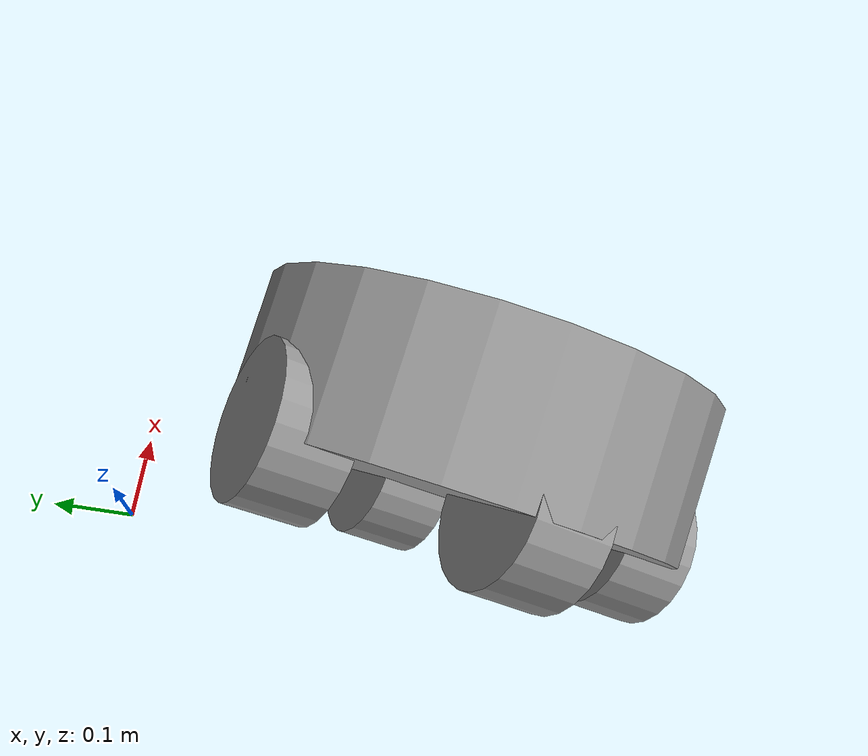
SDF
<?xml version='1.0'?>
<sdf version='1.6'>
  <model name='model'>
    <link name='link_5'>
      <pose frame=''>0.084116 -0.192101 0.138708 3.01191 1.04022 1.42494</pose>
      <inertial>
        <mass>1</mass>
        <inertia>
          <ixx>0.145833</ixx>
          <ixy>0</ixy>
          <ixz>0</ixz>
          <iyy>0.145833</iyy>
          <iyz>0</iyz>
          <izz>0.125</izz>
        </inertia>
        <pose frame=''>0 0 0 0 -0 0</pose>
      </inertial>
      <self_collide>0</self_collide>
      <kinematic>0</kinematic>
      <visual name='visual'>
        <pose frame=''>0 0 0 0 -0 0</pose>
        <geometry>
          <cylinder>
            <radius>0.1</radius>
            <length>0.1</length>
          </cylinder>
        </geometry>
        <material>
          <lighting>1</lighting>
          <script>
            <uri>file://media/materials/scripts/gazebo.material</uri>
            <name>Gazebo/Grey</name>
          </script>
          <shader type='pixel'>
            <normal_map>__default__</normal_map>
          </shader>
          <ambient>0.3 0.3 0.3 1</ambient>
          <diffuse>0.7 0.7 0.7 1</diffuse>
          <specular>0 0 0.01 1</specular>
          <emissive>0 0 0 1</emissive>
        </material>
        <transparency>0</transparency>
        <cast_shadows>1</cast_shadows>
      </visual>
      <collision name='collision'>
        <laser_retro>0</laser_retro>
        <max_contacts>10</max_contacts>
        <pose frame=''>0 0 0 0 -0 0</pose>
        <geometry>
          <cylinder>
            <radius>0.1</radius>
            <length>0.1</length>
          </cylinder>
        </geometry>
        <surface>
          <friction>
            <ode>
              <mu>1</mu>
              <mu2>1</mu2>
              <fdir1>0 0 0</fdir1>
              <slip1>0</slip1>
              <slip2>0</slip2>
            </ode>
            <torsional>
              <coefficient>1</coefficient>
              <patch_radius>0</patch_radius>
              <surface_radius>0</surface_radius>
              <use_patch_radius>1</use_patch_radius>
              <ode>
                <slip>0</slip>
              </ode>
            </torsional>
          </friction>
          <bounce>
            <restitution_coefficient>0</restitution_coefficient>
            <threshold>1e+06</threshold>
          </bounce>
          <contact>
            <collide_without_contact>0</collide_without_contact>
            <collide_without_contact_bitmask>1</collide_without_contact_bitmask>
            <collide_bitmask>1</collide_bitmask>
            <ode>
              <soft_cfm>0</soft_cfm>
              <soft_erp>0.2</soft_erp>
              <kp>1e+13</kp>
              <kd>1</kd>
              <max_vel>0.01</max_vel>
              <min_depth>0</min_depth>
            </ode>
            <bullet>
              <split_impulse>1</split_impulse>
              <split_impulse_penetration_threshold>-0.01</split_impulse_penetration_threshold>
              <soft_cfm>0</soft_cfm>
              <soft_erp>0.2</soft_erp>
              <kp>1e+13</kp>
              <kd>1</kd>
            </bullet>
          </contact>
        </surface>
      </collision>
    </link>
    <link name='link_5_clone'>
      <pose frame=''>0.092898 -0.618652 -0.109782 -2.06079 -0.111875 -3.12499</pose>
      <inertial>
        <mass>1</mass>
        <inertia>
          <ixx>0.145833</ixx>
          <ixy>0</ixy>
          <ixz>0</ixz>
          <iyy>0.145833</iyy>
          <iyz>0</iyz>
          <izz>0.125</izz>
        </inertia>
        <pose frame=''>0 0 0 0 -0 0</pose>
      </inertial>
      <self_collide>0</self_collide>
      <kinematic>0</kinematic>
      <gravity>1</gravity>
      <visual name='visual'>
        <pose frame=''>0 0 0 0 -0 0</pose>
        <geometry>
          <cylinder>
            <radius>0.1</radius>
            <length>0.1</length>
          </cylinder>
        </geometry>
        <material>
          <lighting>1</lighting>
          <script>
            <uri>file://media/materials/scripts/gazebo.material</uri>
            <name>Gazebo/Grey</name>
          </script>
          <shader type='pixel'>
            <normal_map>__default__</normal_map>
          </shader>
          <ambient>0.3 0.3 0.3 1</ambient>
          <diffuse>0.7 0.7 0.7 1</diffuse>
          <specular>0 0 0.01 1</specular>
          <emissive>0 0 0 1</emissive>
        </material>
        <transparency>0</transparency>
        <cast_shadows>1</cast_shadows>
      </visual>
      <collision name='collision'>
        <laser_retro>0</laser_retro>
        <max_contacts>10</max_contacts>
        <pose frame=''>0 0 0 0 -0 0</pose>
        <geometry>
          <cylinder>
            <radius>0.1</radius>
            <length>0.1</length>
          </cylinder>
        </geometry>
        <surface>
          <friction>
            <ode>
              <mu>1</mu>
              <mu2>1</mu2>
              <fdir1>0 0 0</fdir1>
              <slip1>0</slip1>
              <slip2>0</slip2>
            </ode>
            <torsional>
              <coefficient>1</coefficient>
              <patch_radius>0</patch_radius>
              <surface_radius>0</surface_radius>
              <use_patch_radius>1</use_patch_radius>
              <ode>
                <slip>0</slip>
              </ode>
            </torsional>
          </friction>
          <bounce>
            <restitution_coefficient>0</restitution_coefficient>
            <threshold>1e+06</threshold>
          </bounce>
          <contact>
            <collide_without_contact>0</collide_without_contact>
            <collide_without_contact_bitmask>1</collide_without_contact_bitmask>
            <collide_bitmask>1</collide_bitmask>
            <ode>
              <soft_cfm>0</soft_cfm>
              <soft_erp>0.2</soft_erp>
              <kp>1e+13</kp>
              <kd>1</kd>
              <max_vel>0.01</max_vel>
              <min_depth>0</min_depth>
            </ode>
            <bullet>
              <split_impulse>1</split_impulse>
              <split_impulse_penetration_threshold>-0.01</split_impulse_penetration_threshold>
              <soft_cfm>0</soft_cfm>
              <soft_erp>0.2</soft_erp>
              <kp>1e+13</kp>
              <kd>1</kd>
            </bullet>
          </contact>
        </surface>
      </collision>
    </link>
    <link name='link_5_clone_0'>
      <pose frame=''>0.024163 -0.474387 0.132621 -2.10359 0.093263 3.0619</pose>
      <inertial>
        <mass>1</mass>
        <inertia>
          <ixx>0.145833</ixx>
          <ixy>0</ixy>
          <ixz>0</ixz>
          <iyy>0.145833</iyy>
          <iyz>0</iyz>
          <izz>0.125</izz>
        </inertia>
        <pose frame=''>0 0 0 0 -0 0</pose>
      </inertial>
      <self_collide>0</self_collide>
      <kinematic>0</kinematic>
      <visual name='visual'>
        <pose frame=''>0 0 0 0 -0 0</pose>
        <geometry>
          <cylinder>
            <radius>0.1</radius>
            <length>0.1</length>
          </cylinder>
        </geometry>
        <material>
          <lighting>1</lighting>
          <script>
            <uri>file://media/materials/scripts/gazebo.material</uri>
            <name>Gazebo/Grey</name>
          </script>
          <shader type='pixel'>
            <normal_map>__default__</normal_map>
          </shader>
          <ambient>0.3 0.3 0.3 1</ambient>
          <diffuse>0.7 0.7 0.7 1</diffuse>
          <specular>0 0 0.01 1</specular>
          <emissive>0 0 0 1</emissive>
        </material>
        <transparency>0</transparency>
        <cast_shadows>1</cast_shadows>
      </visual>
      <collision name='collision'>
        <laser_retro>0</laser_retro>
        <max_contacts>10</max_contacts>
        <pose frame=''>0 0 0 0 -0 0</pose>
        <geometry>
          <cylinder>
            <radius>0.1</radius>
            <length>0.1</length>
          </cylinder>
        </geometry>
        <surface>
          <friction>
            <ode>
              <mu>1</mu>
              <mu2>1</mu2>
              <fdir1>0 0 0</fdir1>
              <slip1>0</slip1>
              <slip2>0</slip2>
            </ode>
            <torsional>
              <coefficient>1</coefficient>
              <patch_radius>0</patch_radius>
              <surface_radius>0</surface_radius>
              <use_patch_radius>1</use_patch_radius>
              <ode>
                <slip>0</slip>
              </ode>
            </torsional>
          </friction>
          <bounce>
            <restitution_coefficient>0</restitution_coefficient>
            <threshold>1e+06</threshold>
          </bounce>
          <contact>
            <collide_without_contact>0</collide_without_contact>
            <collide_without_contact_bitmask>1</collide_without_contact_bitmask>
            <collide_bitmask>1</collide_bitmask>
            <ode>
              <soft_cfm>0</soft_cfm>
              <soft_erp>0.2</soft_erp>
              <kp>1e+13</kp>
              <kd>1</kd>
              <max_vel>0.01</max_vel>
              <min_depth>0</min_depth>
            </ode>
            <bullet>
              <split_impulse>1</split_impulse>
              <split_impulse_penetration_threshold>-0.01</split_impulse_penetration_threshold>
              <soft_cfm>0</soft_cfm>
              <soft_erp>0.2</soft_erp>
              <kp>1e+13</kp>
              <kd>1</kd>
            </bullet>
          </contact>
        </surface>
      </collision>
    </link>
    <link name='link_5_clone_0_clone'>
      <pose frame=''>0.16643 -0.300922 -0.176753 -2.91707 -1.03814 -1.83648</pose>
      <inertial>
        <mass>1</mass>
        <inertia>
          <ixx>0.145833</ixx>
          <ixy>0</ixy>
          <ixz>0</ixz>
          <iyy>0.145833</iyy>
          <iyz>0</iyz>
          <izz>0.125</izz>
        </inertia>
        <pose frame=''>0 0 0 0 -0 0</pose>
      </inertial>
      <self_collide>0</self_collide>
      <kinematic>0</kinematic>
      <visual name='visual'>
        <pose frame=''>0 0 0 0 -0 0</pose>
        <geometry>
          <cylinder>
            <radius>0.1</radius>
            <length>0.1</length>
          </cylinder>
        </geometry>
        <material>
          <lighting>1</lighting>
          <script>
            <uri>file://media/materials/scripts/gazebo.material</uri>
            <name>Gazebo/Grey</name>
          </script>
          <shader type='pixel'>
            <normal_map>__default__</normal_map>
          </shader>
          <ambient>0.3 0.3 0.3 1</ambient>
          <diffuse>0.7 0.7 0.7 1</diffuse>
          <specular>0 0 0.01 1</specular>
          <emissive>0 0 0 1</emissive>
        </material>
        <transparency>0</transparency>
        <cast_shadows>1</cast_shadows>
      </visual>
      <collision name='collision'>
        <laser_retro>0</laser_retro>
        <max_contacts>10</max_contacts>
        <pose frame=''>0 0 0 0 -0 0</pose>
        <geometry>
          <cylinder>
            <radius>0.1</radius>
            <length>0.1</length>
          </cylinder>
        </geometry>
        <surface>
          <friction>
            <ode>
              <mu>1</mu>
              <mu2>1</mu2>
              <fdir1>0 0 0</fdir1>
              <slip1>0</slip1>
              <slip2>0</slip2>
            </ode>
            <torsional>
              <coefficient>1</coefficient>
              <patch_radius>0</patch_radius>
              <surface_radius>0</surface_radius>
              <use_patch_radius>1</use_patch_radius>
              <ode>
                <slip>0</slip>
              </ode>
            </torsional>
          </friction>
          <bounce>
            <restitution_coefficient>0</restitution_coefficient>
            <threshold>1e+06</threshold>
          </bounce>
          <contact>
            <collide_without_contact>0</collide_without_contact>
            <collide_without_contact_bitmask>1</collide_without_contact_bitmask>
            <collide_bitmask>1</collide_bitmask>
            <ode>
              <soft_cfm>0</soft_cfm>
              <soft_erp>0.2</soft_erp>
              <kp>1e+13</kp>
              <kd>1</kd>
              <max_vel>0.01</max_vel>
              <min_depth>0</min_depth>
            </ode>
            <bullet>
              <split_impulse>1</split_impulse>
              <split_impulse_penetration_threshold>-0.01</split_impulse_penetration_threshold>
              <soft_cfm>0</soft_cfm>
              <soft_erp>0.2</soft_erp>
              <kp>1e+13</kp>
              <kd>1</kd>
            </bullet>
          </contact>
        </surface>
      </collision>
    </link>
    <link name='link_6'>
      <pose frame=''>0.186201 -0.401708 0.002556 1.02767 0.944518 0.934542</pose>
      <inertial>
        <mass>1</mass>
        <inertia>
          <ixx>0.145833</ixx>
          <ixy>0</ixy>
          <ixz>0</ixz>
          <iyy>0.145833</iyy>
          <iyz>0</iyz>
          <izz>0.125</izz>
        </inertia>
        <pose frame=''>0 0 0 0 -0 0</pose>
      </inertial>
      <self_collide>0</self_collide>
      <kinematic>0</kinematic>
      <visual name='visual'>
        <pose frame=''>0 0 0 0 -0 0</pose>
        <geometry>
          <cylinder>
            <radius>0.3</radius>
            <length>0.2</length>
          </cylinder>
        </geometry>
        <material>
          <lighting>1</lighting>
          <script>
            <uri>file://media/materials/scripts/gazebo.material</uri>
            <name>Gazebo/Grey</name>
          </script>
          <shader type='pixel'>
            <normal_map>__default__</normal_map>
          </shader>
          <ambient>0.3 0.3 0.3 1</ambient>
          <diffuse>0.7 0.7 0.7 1</diffuse>
          <specular>0.01 0.01 0.01 1</specular>
          <emissive>0 0 0 1</emissive>
        </material>
        <transparency>0</transparency>
        <cast_shadows>1</cast_shadows>
      </visual>
      <collision name='collision'>
        <laser_retro>0</laser_retro>
        <max_contacts>10</max_contacts>
        <pose frame=''>0 0 0 0 -0 0</pose>
        <geometry>
          <cylinder>
            <radius>0.3</radius>
            <length>0.2</length>
          </cylinder>
        </geometry>
        <surface>
          <friction>
            <ode>
              <mu>1</mu>
              <mu2>1</mu2>
              <fdir1>0 0 0</fdir1>
              <slip1>0</slip1>
              <slip2>0</slip2>
            </ode>
            <torsional>
              <coefficient>1</coefficient>
              <patch_radius>0</patch_radius>
              <surface_radius>0</surface_radius>
              <use_patch_radius>1</use_patch_radius>
              <ode>
                <slip>0</slip>
              </ode>
            </torsional>
          </friction>
          <bounce>
            <restitution_coefficient>0</restitution_coefficient>
            <threshold>1e+06</threshold>
          </bounce>
          <contact>
            <collide_without_contact>0</collide_without_contact>
            <collide_without_contact_bitmask>1</collide_without_contact_bitmask>
            <collide_bitmask>1</collide_bitmask>
            <ode>
              <soft_cfm>0</soft_cfm>
              <soft_erp>0.2</soft_erp>
              <kp>1e+13</kp>
              <kd>1</kd>
              <max_vel>0.01</max_vel>
              <min_depth>0</min_depth>
            </ode>
            <bullet>
              <split_impulse>1</split_impulse>
              <split_impulse_penetration_threshold>-0.01</split_impulse_penetration_threshold>
              <soft_cfm>0</soft_cfm>
              <soft_erp>0.2</soft_erp>
              <kp>1e+13</kp>
              <kd>1</kd>
            </bullet>
          </contact>
        </surface>
      </collision>
    </link>
    <joint name='link_6_JOINT_0' type='revolute'>
      <parent>link_6</parent>
      <child>link_5_clone</child>
      <pose frame=''>0 0 0 0 -0.04 0</pose>
      <axis>
        <xyz>1 0 0</xyz>
        <use_parent_model_frame>0</use_parent_model_frame>
        <limit>
          <lower>-1.79769e+308</lower>
          <upper>1.79769e+308</upper>
          <effort>-1</effort>
          <velocity>-1</velocity>
        </limit>
        <dynamics>
          <spring_reference>0</spring_reference>
          <spring_stiffness>0</spring_stiffness>
          <damping>0</damping>
          <friction>0</friction>
        </dynamics>
      </axis>
      <physics>
        <ode>
          <limit>
            <cfm>0</cfm>
            <erp>0.2</erp>
          </limit>
          <suspension>
            <cfm>0</cfm>
            <erp>0.2</erp>
          </suspension>
        </ode>
      </physics>
    </joint>
    <joint name='link_6_JOINT_1_0' type='revolute'>
      <parent>link_6</parent>
      <child>link_5_clone_0_clone</child>
      <pose frame=''>0 0 0 0 -0 0</pose>
      <axis>
        <xyz>1 0 0</xyz>
        <use_parent_model_frame>0</use_parent_model_frame>
        <limit>
          <lower>-1.79769e+308</lower>
          <upper>1.79769e+308</upper>
          <effort>-1</effort>
          <velocity>-1</velocity>
        </limit>
        <dynamics>
          <spring_reference>0</spring_reference>
          <spring_stiffness>0</spring_stiffness>
          <damping>0</damping>
          <friction>0</friction>
        </dynamics>
      </axis>
      <physics>
        <ode>
          <limit>
            <cfm>0</cfm>
            <erp>0.2</erp>
          </limit>
          <suspension>
            <cfm>0</cfm>
            <erp>0.2</erp>
          </suspension>
        </ode>
      </physics>
    </joint>
    <joint name='link_6_JOINT_1' type='revolute'>
      <parent>link_6</parent>
      <child>link_5_clone_0</child>
      <pose frame=''>0 0 0 0 -0 0</pose>
      <axis>
        <xyz>1 0 0</xyz>
        <use_parent_model_frame>0</use_parent_model_frame>
        <limit>
          <lower>-1.79769e+308</lower>
          <upper>1.79769e+308</upper>
          <effort>-1</effort>
          <velocity>-1</velocity>
        </limit>
        <dynamics>
          <spring_reference>0</spring_reference>
          <spring_stiffness>0</spring_stiffness>
          <damping>0</damping>
          <friction>0</friction>
        </dynamics>
      </axis>
      <physics>
        <ode>
          <limit>
            <cfm>0</cfm>
            <erp>0.2</erp>
          </limit>
          <suspension>
            <cfm>0</cfm>
            <erp>0.2</erp>
          </suspension>
        </ode>
      </physics>
    </joint>
    <joint name='link_6_JOINT_2' type='revolute'>
      <parent>link_6</parent>
      <child>link_5_clone_0</child>
      <pose frame=''>0 0 0 0 -0 0</pose>
      <axis>
        <xyz>1 0 0</xyz>
        <use_parent_model_frame>0</use_parent_model_frame>
        <limit>
          <lower>-1.79769e+308</lower>
          <upper>1.79769e+308</upper>
          <effort>-1</effort>
          <velocity>-1</velocity>
        </limit>
        <dynamics>
          <spring_reference>0</spring_reference>
          <spring_stiffness>0</spring_stiffness>
          <damping>0</damping>
          <friction>0</friction>
        </dynamics>
      </axis>
      <physics>
        <ode>
          <limit>
            <cfm>0</cfm>
            <erp>0.2</erp>
          </limit>
          <suspension>
            <cfm>0</cfm>
            <erp>0.2</erp>
          </suspension>
        </ode>
      </physics>
    </joint>
    <static>0</static>
    <allow_auto_disable>0</allow_auto_disable>
  </model>
</sdf>
